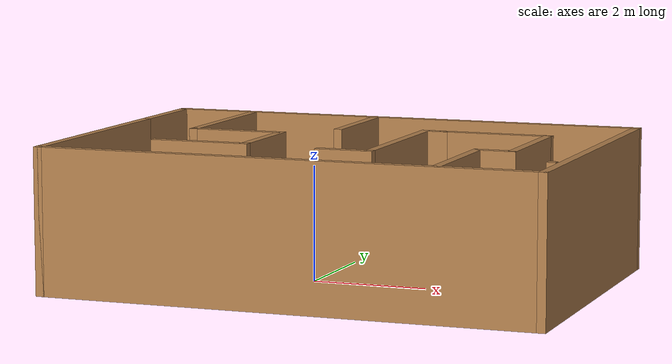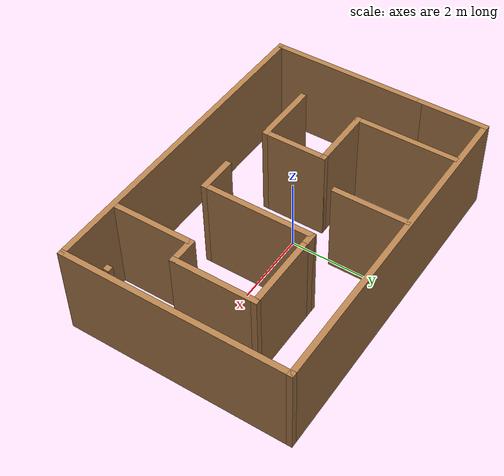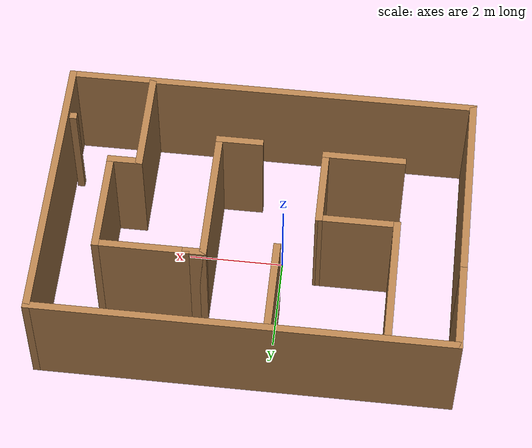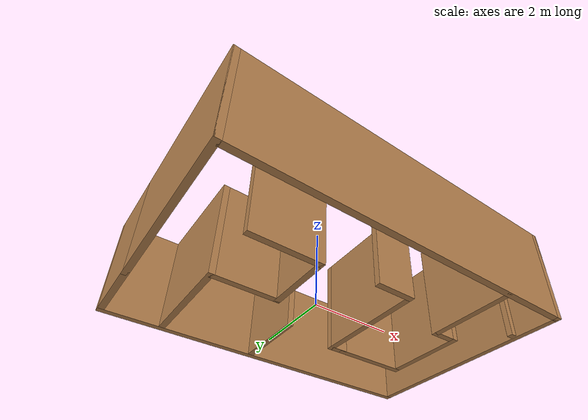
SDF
<?xml version='1.0'?>
<sdf version='1.7'>
  <model name='new'>
    <pose>0.537306 0.130453 0 0 -0 0</pose>
    <link name='Wall_10'>
      <collision name='Wall_10_Collision'>
        <geometry>
          <box>
            <size>6 0.15 2.5</size>
          </box>
        </geometry>
        <pose>0 0 1.25 0 -0 0</pose>
      </collision>
      <visual name='Wall_10_Visual'>
        <pose>0 0 1.25 0 -0 0</pose>
        <geometry>
          <box>
            <size>6 0.15 2.5</size>
          </box>
        </geometry>
        <material>
          <script>
            <uri>file://media/materials/scripts/gazebo.material</uri>
            <name>Gazebo/Wood</name>
          </script>
          <ambient>1 1 1 1</ambient>
        </material>
        <meta>
          <layer>0</layer>
        </meta>
      </visual>
      <pose>4.3 0 0 0 -0 1.5708</pose>
    </link>
    <link name='Wall_11'>
      <collision name='Wall_11_Collision'>
        <geometry>
          <box>
            <size>8.75 0.15 2.5</size>
          </box>
        </geometry>
        <pose>0 0 1.25 0 -0 0</pose>
      </collision>
      <visual name='Wall_11_Visual'>
        <pose>0 0 1.25 0 -0 0</pose>
        <geometry>
          <box>
            <size>8.75 0.15 2.5</size>
          </box>
        </geometry>
        <material>
          <script>
            <uri>file://media/materials/scripts/gazebo.material</uri>
            <name>Gazebo/Wood</name>
          </script>
          <ambient>1 1 1 1</ambient>
        </material>
        <meta>
          <layer>0</layer>
        </meta>
      </visual>
      <pose>0 2.925 0 0 -0 3.14159</pose>
    </link>
    <link name='Wall_12'>
      <collision name='Wall_12_Collision'>
        <geometry>
          <box>
            <size>1.9 0.15 2.5</size>
          </box>
        </geometry>
        <pose>0 0 1.25 0 -0 0</pose>
      </collision>
      <visual name='Wall_12_Visual'>
        <pose>0 0 1.25 0 -0 0</pose>
        <geometry>
          <box>
            <size>1.9 0.15 2.5</size>
          </box>
        </geometry>
        <material>
          <script>
            <uri>file://media/materials/scripts/gazebo.material</uri>
            <name>Gazebo/Wood</name>
          </script>
          <ambient>1 1 1 1</ambient>
        </material>
        <meta>
          <layer>0</layer>
        </meta>
      </visual>
      <pose>-4.3 2.05 0 0 -0 -1.5708</pose>
    </link>
    <link name='Wall_15'>
      <collision name='Wall_15_Collision'>
        <geometry>
          <box>
            <size>2.25 0.15 2.5</size>
          </box>
        </geometry>
        <pose>0 0 1.25 0 -0 0</pose>
      </collision>
      <visual name='Wall_15_Visual'>
        <pose>0 0 1.25 0 -0 0</pose>
        <geometry>
          <box>
            <size>2.25 0.15 2.5</size>
          </box>
        </geometry>
        <material>
          <script>
            <uri>file://media/materials/scripts/gazebo.material</uri>
            <name>Gazebo/Wood</name>
          </script>
          <ambient>1 1 1 1</ambient>
        </material>
        <meta>
          <layer>0</layer>
        </meta>
      </visual>
      <pose>2.56054 -1.83901 0 0 -0 1.5708</pose>
    </link>
    <link name='Wall_17'>
      <collision name='Wall_17_Collision'>
        <geometry>
          <box>
            <size>2.75 0.15 2.5</size>
          </box>
        </geometry>
        <pose>0 0 1.25 0 -0 0</pose>
      </collision>
      <visual name='Wall_17_Visual'>
        <pose>0 0 1.25 0 -0 0</pose>
        <geometry>
          <box>
            <size>2.75 0.15 2.5</size>
          </box>
        </geometry>
        <material>
          <script>
            <uri>file://media/materials/scripts/gazebo.material</uri>
            <name>Gazebo/Wood</name>
          </script>
          <ambient>1 1 1 1</ambient>
        </material>
        <meta>
          <layer>0</layer>
        </meta>
      </visual>
      <pose>-2.89829 1.52425 0 0 -0 -1.5708</pose>
    </link>
    <link name='Wall_18'>
      <collision name='Wall_18_Collision'>
        <geometry>
          <box>
            <size>1.75 0.15 2.5</size>
          </box>
        </geometry>
        <pose>0 0 1.25 0 -0 0</pose>
      </collision>
      <visual name='Wall_18_Visual'>
        <pose>0 0 1.25 0 -0 0</pose>
        <geometry>
          <box>
            <size>1.75 0.15 2.5</size>
          </box>
        </geometry>
        <material>
          <script>
            <uri>file://media/materials/scripts/gazebo.material</uri>
            <name>Gazebo/Wood</name>
          </script>
          <ambient>1 1 1 1</ambient>
        </material>
        <meta>
          <layer>0</layer>
        </meta>
      </visual>
      <pose>-2.09829 0.224251 0 0 -0 0</pose>
    </link>
    <link name='Wall_19'>
      <collision name='Wall_19_Collision'>
        <geometry>
          <box>
            <size>1.75 0.15 2.5</size>
          </box>
        </geometry>
        <pose>0 0 1.25 0 -0 0</pose>
      </collision>
      <visual name='Wall_19_Visual'>
        <pose>0 0 1.25 0 -0 0</pose>
        <geometry>
          <box>
            <size>1.75 0.15 2.5</size>
          </box>
        </geometry>
        <material>
          <script>
            <uri>file://media/materials/scripts/gazebo.material</uri>
            <name>Gazebo/Wood</name>
          </script>
          <ambient>1 1 1 1</ambient>
        </material>
        <meta>
          <layer>0</layer>
        </meta>
      </visual>
      <pose>-1.29829 -0.575749 0 0 -0 -1.5708</pose>
    </link>
    <link name='Wall_2'>
      <collision name='Wall_2_Collision'>
        <geometry>
          <box>
            <size>0.15 0.15 2.5</size>
          </box>
        </geometry>
        <pose>0 0 1.25 0 -0 0</pose>
      </collision>
      <visual name='Wall_2_Visual'>
        <pose>0 0 1.25 0 -0 0</pose>
        <geometry>
          <box>
            <size>0.15 0.15 2.5</size>
          </box>
        </geometry>
        <material>
          <script>
            <uri>file://media/materials/scripts/gazebo.material</uri>
            <name>Gazebo/Wood</name>
          </script>
          <ambient>1 1 1 1</ambient>
        </material>
        <meta>
          <layer>0</layer>
        </meta>
      </visual>
      <pose>4.1127 -1.81045 0 0 -0 0</pose>
    </link>
    <link name='Wall_20'>
      <collision name='Wall_20_Collision'>
        <geometry>
          <box>
            <size>1.75 0.15 2.5</size>
          </box>
        </geometry>
        <pose>0 0 1.25 0 -0 0</pose>
      </collision>
      <visual name='Wall_20_Visual'>
        <pose>0 0 1.25 0 -0 0</pose>
        <geometry>
          <box>
            <size>1.75 0.15 2.5</size>
          </box>
        </geometry>
        <material>
          <script>
            <uri>file://media/materials/scripts/gazebo.material</uri>
            <name>Gazebo/Wood</name>
          </script>
          <ambient>1 1 1 1</ambient>
        </material>
        <meta>
          <layer>0</layer>
        </meta>
      </visual>
      <pose>-2.09829 -1.37575 0 0 -0 3.14159</pose>
    </link>
    <link name='Wall_22'>
      <collision name='Wall_22_Collision'>
        <geometry>
          <box>
            <size>0.75 0.15 2.5</size>
          </box>
        </geometry>
        <pose>0 0 1.25 0 -0 0</pose>
      </collision>
      <visual name='Wall_22_Visual'>
        <pose>0 0 1.25 0 -0 0</pose>
        <geometry>
          <box>
            <size>0.75 0.15 2.5</size>
          </box>
        </geometry>
        <material>
          <script>
            <uri>file://media/materials/scripts/gazebo.material</uri>
            <name>Gazebo/Wood</name>
          </script>
          <ambient>1 1 1 1</ambient>
        </material>
        <meta>
          <layer>0</layer>
        </meta>
      </visual>
      <pose>2.86054 -0.789009 0 0 -0 0</pose>
    </link>
    <link name='Wall_23'>
      <collision name='Wall_23_Collision'>
        <geometry>
          <box>
            <size>2.25 0.15 2.5</size>
          </box>
        </geometry>
        <pose>0 0 1.25 0 -0 0</pose>
      </collision>
      <visual name='Wall_23_Visual'>
        <pose>0 0 1.25 0 -0 0</pose>
        <geometry>
          <box>
            <size>2.25 0.15 2.5</size>
          </box>
        </geometry>
        <material>
          <script>
            <uri>file://media/materials/scripts/gazebo.material</uri>
            <name>Gazebo/Wood</name>
          </script>
          <ambient>1 1 1 1</ambient>
        </material>
        <meta>
          <layer>0</layer>
        </meta>
      </visual>
      <pose>3.16054 0.260991 0 0 -0 1.5708</pose>
    </link>
    <link name='Wall_24'>
      <collision name='Wall_24_Collision'>
        <geometry>
          <box>
            <size>2 0.15 2.5</size>
          </box>
        </geometry>
        <pose>0 0 1.25 0 -0 0</pose>
      </collision>
      <visual name='Wall_24_Visual'>
        <pose>0 0 1.25 0 -0 0</pose>
        <geometry>
          <box>
            <size>2 0.15 2.5</size>
          </box>
        </geometry>
        <material>
          <script>
            <uri>file://media/materials/scripts/gazebo.material</uri>
            <name>Gazebo/Wood</name>
          </script>
          <ambient>1 1 1 1</ambient>
        </material>
        <meta>
          <layer>0</layer>
        </meta>
      </visual>
      <pose>2.23554 1.31099 0 0 -0 3.14159</pose>
    </link>
    <link name='Wall_25'>
      <collision name='Wall_25_Collision'>
        <geometry>
          <box>
            <size>0.5 0.15 2.5</size>
          </box>
        </geometry>
        <pose>0 0 1.25 0 -0 0</pose>
      </collision>
      <visual name='Wall_25_Visual'>
        <pose>0 0 1.25 0 -0 0</pose>
        <geometry>
          <box>
            <size>0.5 0.15 2.5</size>
          </box>
        </geometry>
        <material>
          <script>
            <uri>file://media/materials/scripts/gazebo.material</uri>
            <name>Gazebo/Wood</name>
          </script>
          <ambient>1 1 1 1</ambient>
        </material>
        <meta>
          <layer>0</layer>
        </meta>
      </visual>
      <pose>1.13554 1.31099 0 0 -0 3.14159</pose>
    </link>
    <link name='Wall_26'>
      <collision name='Wall_26_Collision'>
        <geometry>
          <box>
            <size>3 0.15 2.5</size>
          </box>
        </geometry>
        <pose>0 0 1.25 0 -0 0</pose>
      </collision>
      <visual name='Wall_26_Visual'>
        <pose>0 0 1.25 0 -0 0</pose>
        <geometry>
          <box>
            <size>3 0.15 2.5</size>
          </box>
        </geometry>
        <material>
          <script>
            <uri>file://media/materials/scripts/gazebo.material</uri>
            <name>Gazebo/Wood</name>
          </script>
          <ambient>1 1 1 1</ambient>
        </material>
        <meta>
          <layer>0</layer>
        </meta>
      </visual>
      <pose>0.960536 -0.114009 0 0 -0 -1.5708</pose>
    </link>
    <link name='Wall_27'>
      <collision name='Wall_27_Collision'>
        <geometry>
          <box>
            <size>1 0.15 2.5</size>
          </box>
        </geometry>
        <pose>0 0 1.25 0 -0 0</pose>
      </collision>
      <visual name='Wall_27_Visual'>
        <pose>0 0 1.25 0 -0 0</pose>
        <geometry>
          <box>
            <size>1 0.15 2.5</size>
          </box>
        </geometry>
        <material>
          <script>
            <uri>file://media/materials/scripts/gazebo.material</uri>
            <name>Gazebo/Wood</name>
          </script>
          <ambient>1 1 1 1</ambient>
        </material>
        <meta>
          <layer>0</layer>
        </meta>
      </visual>
      <pose>0.535536 -1.53901 0 0 -0 3.14159</pose>
    </link>
    <link name='Wall_29'>
      <collision name='Wall_29_Collision'>
        <geometry>
          <box>
            <size>2 0.15 2.5</size>
          </box>
        </geometry>
        <pose>0 0 1.25 0 -0 0</pose>
      </collision>
      <visual name='Wall_29_Visual'>
        <pose>0 0 1.25 0 -0 0</pose>
        <geometry>
          <box>
            <size>2 0.15 2.5</size>
          </box>
        </geometry>
        <material>
          <script>
            <uri>file://media/materials/scripts/gazebo.material</uri>
            <name>Gazebo/Wood</name>
          </script>
          <ambient>1 1 1 1</ambient>
        </material>
        <meta>
          <layer>0</layer>
        </meta>
      </visual>
      <pose>-0.515835 1.94551 0 0 -0 -1.5708</pose>
    </link>
    <link name='Wall_8'>
      <collision name='Wall_8_Collision'>
        <geometry>
          <box>
            <size>4.25 0.15 2.5</size>
          </box>
        </geometry>
        <pose>0 0 1.25 0 -0 0</pose>
      </collision>
      <visual name='Wall_8_Visual'>
        <pose>0 0 1.25 0 -0 0</pose>
        <geometry>
          <box>
            <size>4.25 0.15 2.5</size>
          </box>
        </geometry>
        <material>
          <script>
            <uri>file://media/materials/scripts/gazebo.material</uri>
            <name>Gazebo/Wood</name>
          </script>
          <ambient>1 1 1 1</ambient>
        </material>
        <meta>
          <layer>0</layer>
        </meta>
      </visual>
      <pose>-4.3 -0.875 0 0 -0 -1.5708</pose>
    </link>
    <link name='Wall_9'>
      <collision name='Wall_9_Collision'>
        <geometry>
          <box>
            <size>8.75 0.15 2.5</size>
          </box>
        </geometry>
        <pose>0 0 1.25 0 -0 0</pose>
      </collision>
      <visual name='Wall_9_Visual'>
        <pose>0 0 1.25 0 -0 0</pose>
        <geometry>
          <box>
            <size>8.75 0.15 2.5</size>
          </box>
        </geometry>
        <material>
          <script>
            <uri>file://media/materials/scripts/gazebo.material</uri>
            <name>Gazebo/Wood</name>
          </script>
          <ambient>1 1 1 1</ambient>
        </material>
        <meta>
          <layer>0</layer>
        </meta>
      </visual>
      <pose>0 -2.925 0 0 -0 0</pose>
    </link>
    <static>1</static>
  </model>
</sdf>
